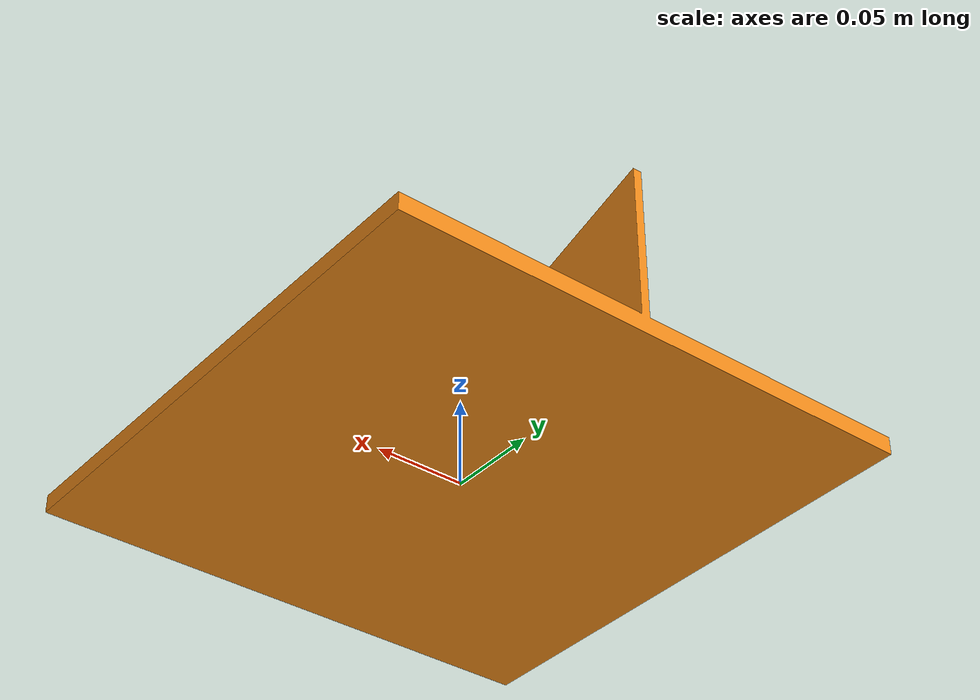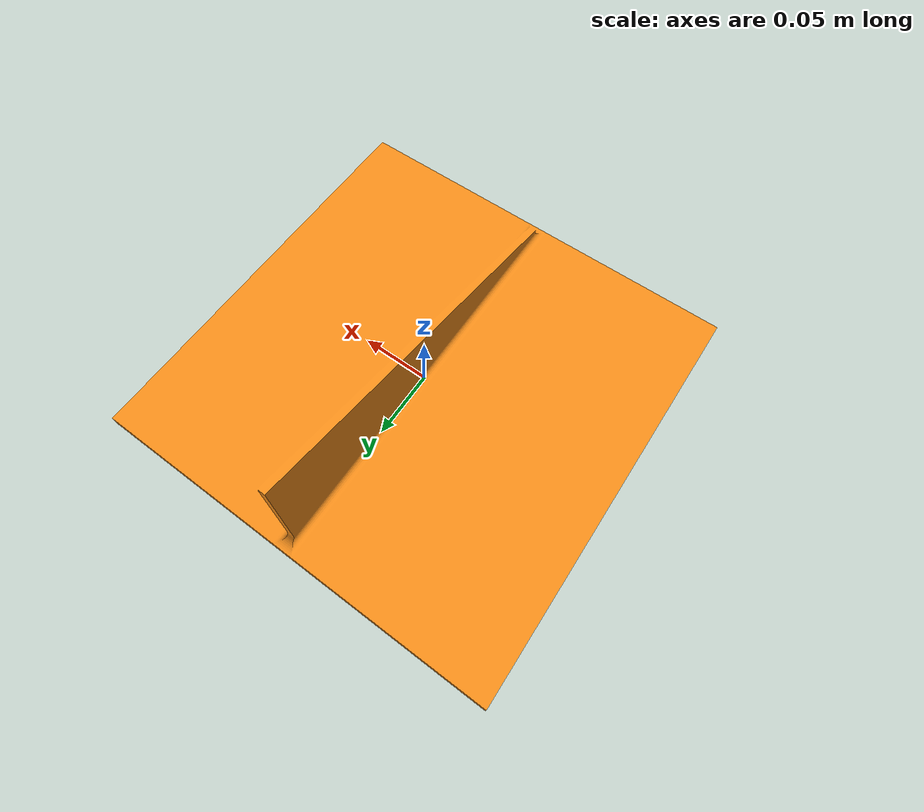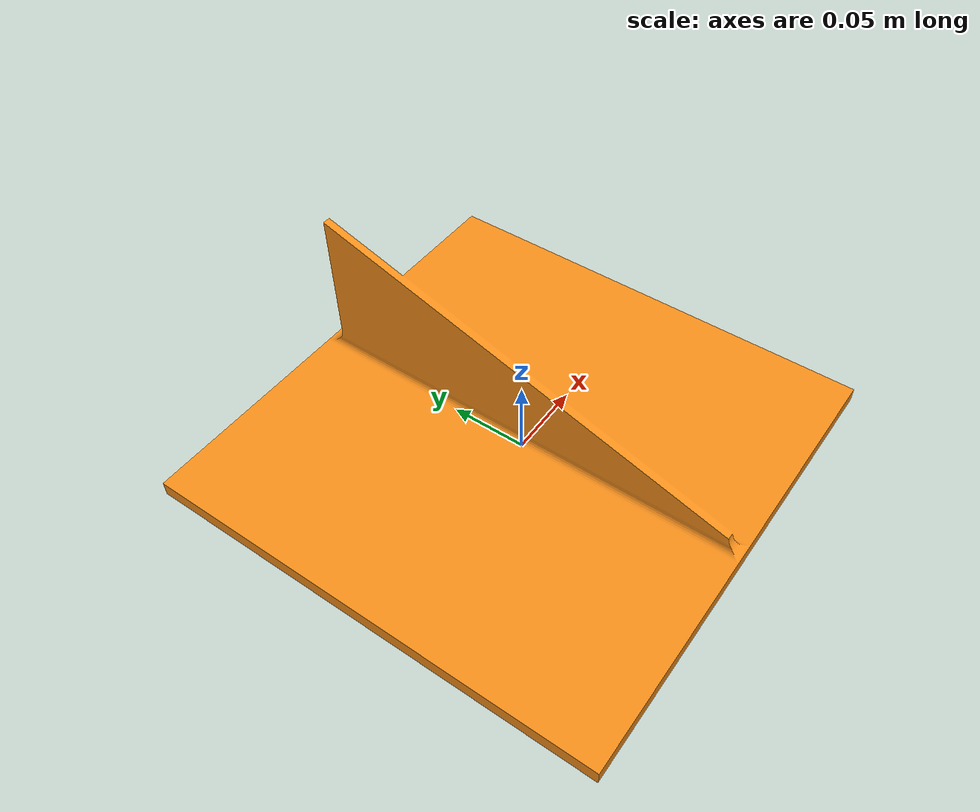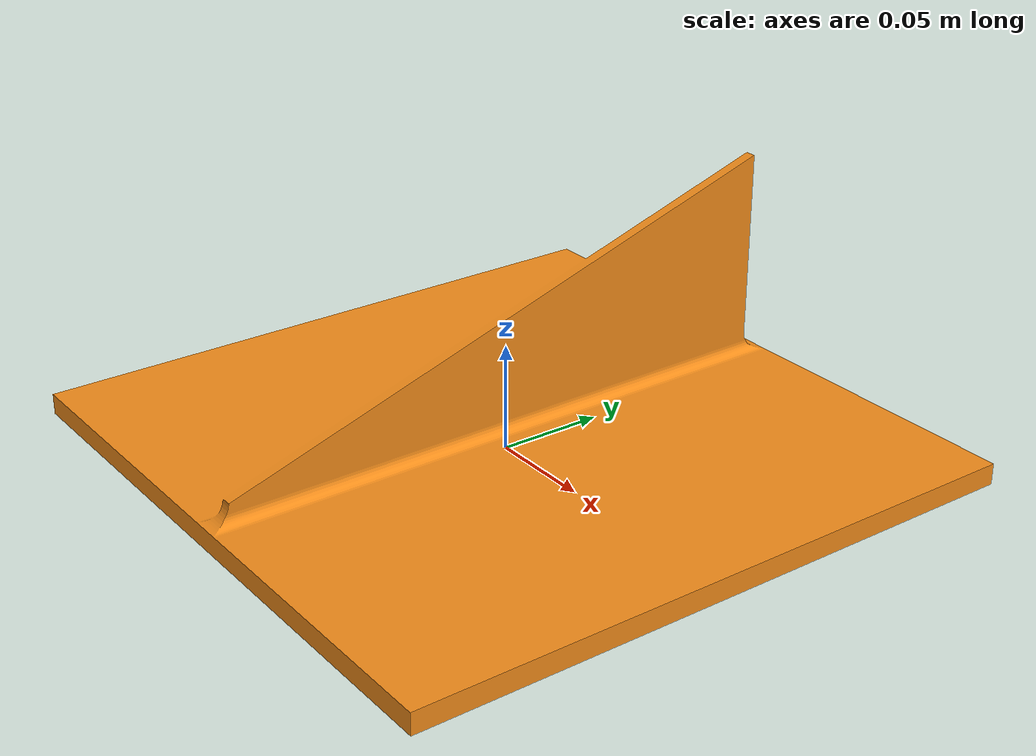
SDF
<?xml version="1.0"?>

<sdf version="1.5">
  <model name='line_2_5d'>
    <link name='line_2_5d_root_link'>
      <pose>0 0 0 0 0 0</pose>
      <inertial>
	<!-- CoM -->
	<pose>0.0 0.0 0.0</pose>
        <mass>0.2</mass>
        <inertia>
          <ixx>0.001354763904</ixx>
          <ixy>0.0</ixy>
          <ixz>0.0</ixz>
          <iyy>0.001354764032</iyy>
          <iyz>0.0</iyz>
          <izz>0.002700175872</izz>
        </inertia>
      </inertial>
      <collision name='line_2_5d_collision'>
        <geometry>
          <mesh><uri>model://cf_line_2_5d/line_2_5d.stl</uri></mesh>
        </geometry>
	<surface>
          <friction>
            <ode>
              <mu>0.1</mu>
              <mu2>0.1</mu2>
            </ode>
          </friction>
	</surface>
      </collision>
      <visual name='line_2_5d_visual'>
        <geometry>
          <mesh><uri>model://cf_line_2_5d/line_2_5d.dae</uri></mesh>
        </geometry>
        <material>
	  <script>
	    <uri>file://media/materials/scripts/gazebo.material</uri>
	    <name>Gazebo/Orange</name>
	  </script>
        </material>
      </visual>
    </link>
  </model>
</sdf>
